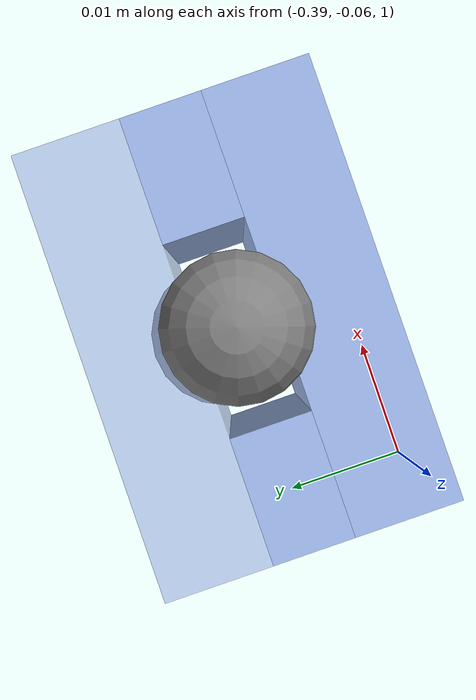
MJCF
<mujoco model="curved_hole">
    <asset>
        <mesh name="hole01" file="hole01.STL" scale="0.001 0.001 0.001" />
        <mesh name="hole02" file="hole02.STL" scale="0.001 0.001 0.001" />
        <mesh name="hole031" file="hole03_1.STL" scale="0.001 0.001 0.001" />
        <mesh name="hole032" file="hole03_2c_8mm.STL" scale="0.001 0.001 0.001" />
        <mesh name="hole033" file="hole03_3.STL" scale="0.001 0.001 0.001" />
    </asset>

    <worldbody>
        <camera mode="trackcom" target="box" pos="0.01 0.25 1.99" axisangle="0 0.5 1.4 3.1415927" />
        <body mocap="true" name="box" pos="-0.375 -0.05  1.005" quat="1 0 0 0">
            <body name="hole_object">
                <body name="object1">
                <geom pos="0 0 0" type="mesh" mesh="hole01" rgba="0.6 0.7 0.9 0.595" />
                <body name="object2">
                <geom pos="0 0 0" type="mesh" mesh="hole02" rgba="0.6 0.7 0.9 0.995" />
                <body name="object3">
                <geom pos="0 0 0" type="mesh" mesh="hole031" rgba="0.6 0.7 0.9 0.995" />
                <body name="object5">
                <geom pos="0 0 0" type="mesh" mesh="hole033" rgba="0.6 0.7 0.9 0.995" />
                <site name="hole_top" pos="0 0 0.012" type="sphere" size=".005 .005 .005" />
                <site name="hole_center_top" pos="0 0.001 0.008" type="sphere" size=".005 .005 .005" />
                <site name="hole_center_bottom" pos="0 0.001 0" type="sphere" size=".005 .005 .005" />
                <site name="hole_bottom" pos="0 0 0" type="sphere" size=".005 .005 .005" />
                </body>
                </body>
                </body>
                </body>
            </body>
        </body>
    </worldbody>
</mujoco>
